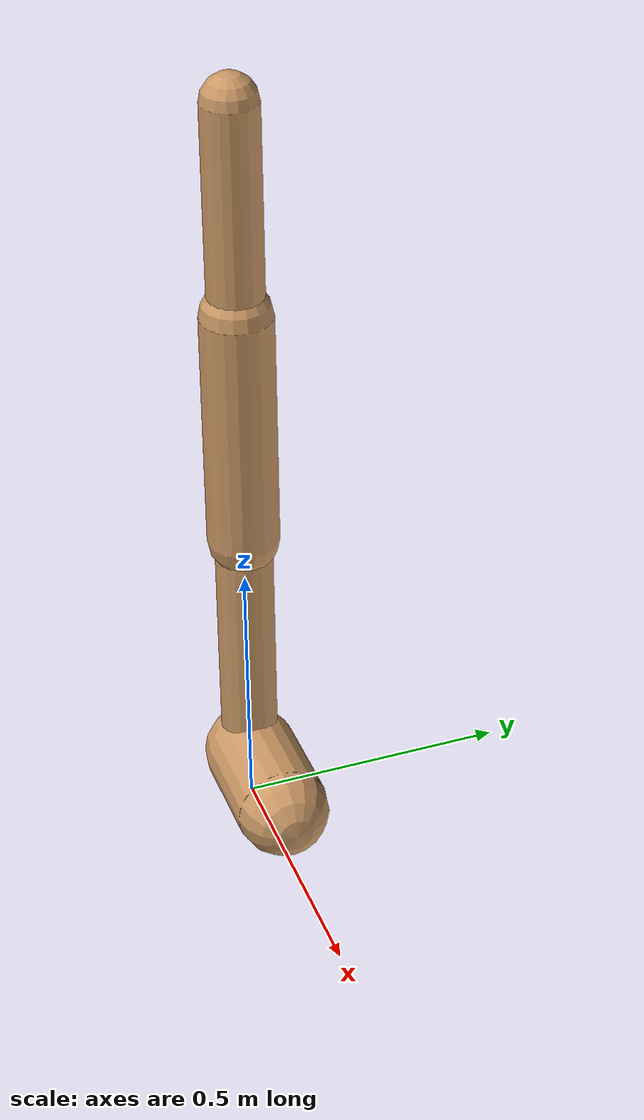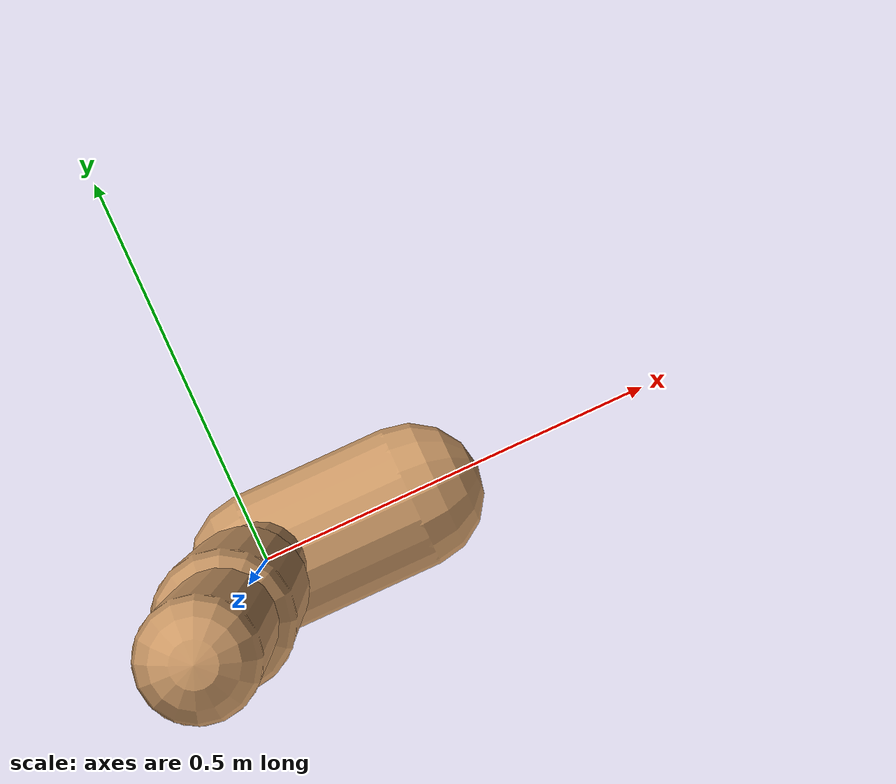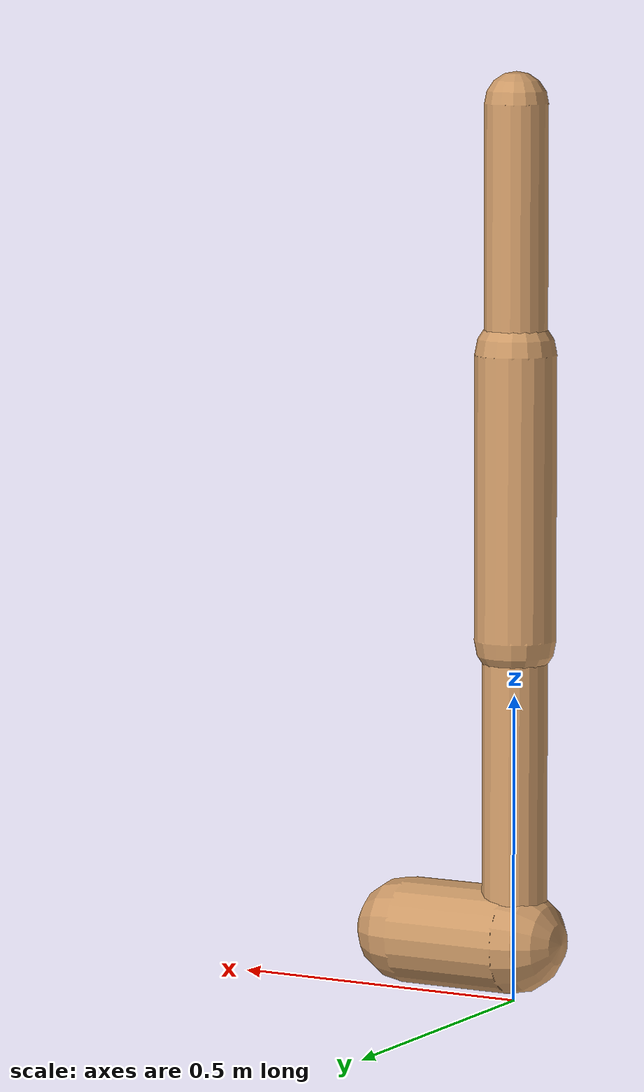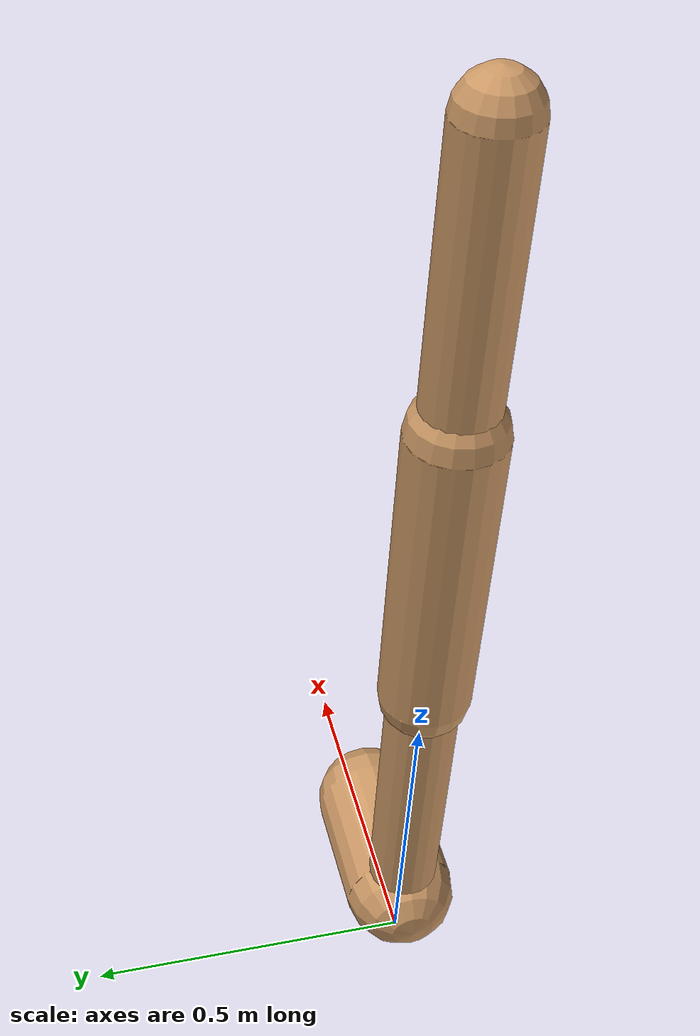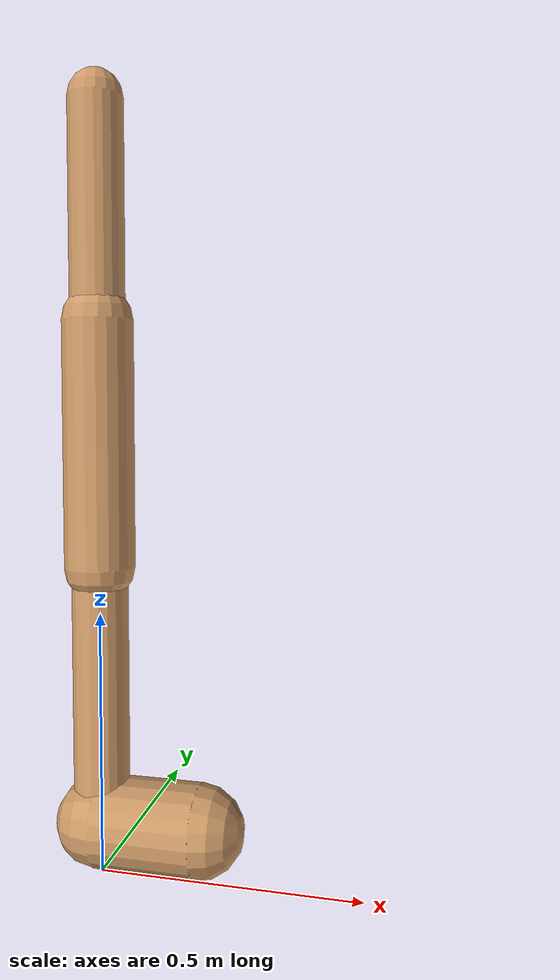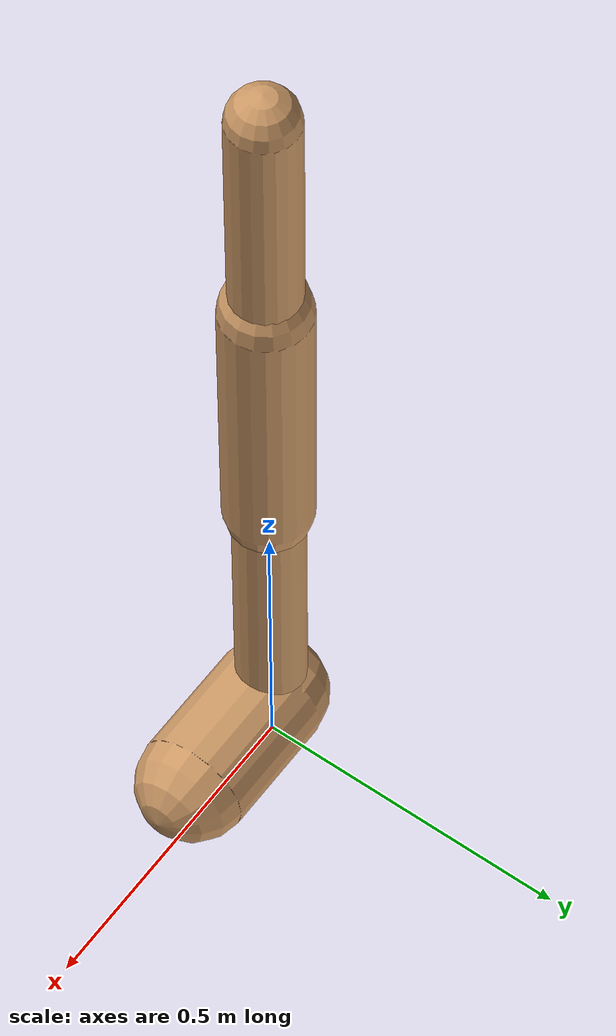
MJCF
<mujoco model="walker2d">
  <compiler angle="degree" coordinate="global" inertiafromgeom="true" />
  <default>
    <joint armature="0.01" damping=".1" limited="true" />
    <geom conaffinity="0" condim="3" contype="1" density="1000" friction="0.8 .1 .1" rgba="0.8 0.6 .4 1" />
  </default>
  <option integrator="RK4" timestep="0.002" />
  <worldbody>

    <body name="torso" pos="0 0 0.020053122915730172">
      <joint armature="0" axis="1 0 0" damping="0" limited="false" name="ignorex" pos="0 0 0" stiffness="0" type="slide" />
      <joint armature="0" axis="0 0 1" damping="0" limited="false" name="ignorez" pos="0 0 0" ref="1.25" stiffness="0" type="slide" />
      <joint armature="0" axis="0 1 0" damping="0" limited="false" name="ignorey" pos="0 0 0" stiffness="0" type="hinge" />
      <geom fromto="0 0 1.45 0 0 1.05" name="torso_geom" size="0.05148045913307833" type="capsule" />
      <body name="thigh">
        <joint axis="0 -1 0" name="thigh_joint" pos="0 0 1.05" range="-150 0" type="hinge" />
        <geom fromto="0.0 0.0 1.05 0.0 0.0 0.5905011523030752" name="thigh_geom" size="0.06640406502299312" type="capsule" />
        <body name="leg" pos="0.0 0.0 -0.009498847696924773">
          <joint axis="0 -1 0" name="leg_joint" pos="0 0 0.6" range="-150 0" type="hinge" />
          <geom fromto="0.0 0.0 0.6 0.0 0.0 0.08944572478119465" name="leg_geom" size="0.0531232520183945" type="capsule" />
          <body name="foot" pos="0.0 0.0 -0.01055427521880535">
            <joint axis="0 -1 0" name="foot_joint" pos="0 0 0.1" range="-45 45" type="hinge" />
            <geom fromto="0.0 0.0 0.1 0.1919150935910461 0.0 0.1" name="foot_geom" size="0.08675838732166537" type="capsule" />
          </body>
        </body>
      </body>

      <body name="thigh_left">
        <joint axis="0 -1 0" name="thigh_left_joint" pos="0 0 1.05" range="-150 0" type="hinge" />
        <geom fromto="0.0 0.0 1.05 0.0 0.0 0.5905011523030752" name="thigh_left_geom" rgba=".7 .3 .6 1" size="0.06640406502299312" type="capsule" />
        <body name="leg_left" pos="0.0 0.0 -0.009498847696924773">
          <joint axis="0 -1 0" name="leg_left_joint" pos="0 0 0.6" range="-150 0" type="hinge" />
          <geom fromto="0.0 0.0 0.6 0.0 0.0 0.08944572478119465" name="leg_left_geom" rgba=".7 .3 .6 1" size="0.0531232520183945" type="capsule" />
          <body name="foot_left" pos="0.0 0.0 -0.01055427521880535">
            <joint axis="0 -1 0" name="foot_left_joint" pos="0 0 0.1" range="-45 45" type="hinge" />
            <geom fromto="0.0 0.0 0.1 0.1919150935910461 0.0 0.1" name="foot_left_geom" rgba=".7 .3 .6 1" size="0.08675838732166537" type="capsule" />
          </body>
        </body>
      </body>
    </body>
  </worldbody>
  <actuator>

    <motor ctrllimited="true" ctrlrange="-1.0 1.0" gear="100" joint="thigh_joint" />
    <motor ctrllimited="true" ctrlrange="-1.0 1.0" gear="100" joint="leg_joint" />
    <motor ctrllimited="true" ctrlrange="-1.0 1.0" gear="100" joint="foot_joint" />
    <motor ctrllimited="true" ctrlrange="-1.0 1.0" gear="100" joint="thigh_left_joint" />
    <motor ctrllimited="true" ctrlrange="-1.0 1.0" gear="100" joint="leg_left_joint" />
    <motor ctrllimited="true" ctrlrange="-1.0 1.0" gear="100" joint="foot_left_joint" />

  </actuator>
</mujoco>
